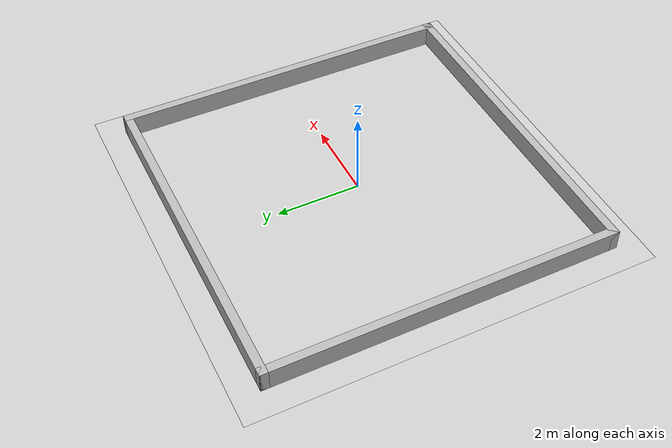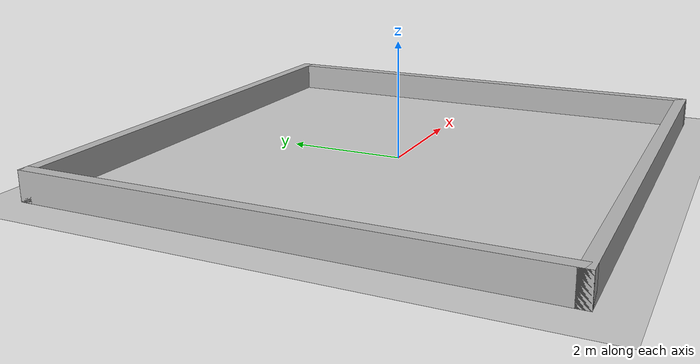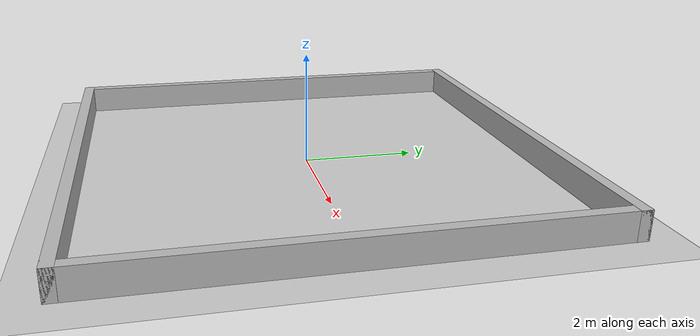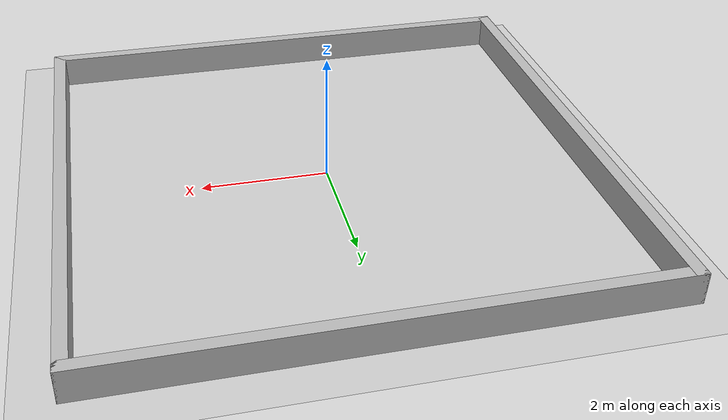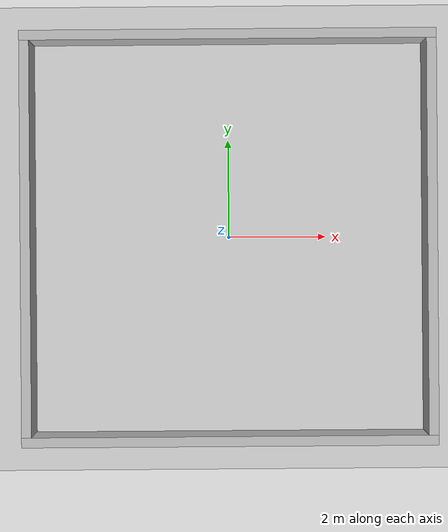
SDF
<?xml version="1.0" ?>
<!--
Copyright 2026 amr-sim-lab contributors
Licensed under the Apache License, Version 2.0. See LICENSE.
-->
<sdf version="1.10">
  <world name="warehouse">
    <physics name="1ms" type="ignored">
      <max_step_size>0.001</max_step_size>
      <real_time_factor>1.0</real_time_factor>
    </physics>

    <plugin filename="gz-sim-physics-system"
            name="gz::sim::systems::Physics"/>
    <plugin filename="gz-sim-user-commands-system"
            name="gz::sim::systems::UserCommands"/>
    <plugin filename="gz-sim-scene-broadcaster-system"
            name="gz::sim::systems::SceneBroadcaster"/>
    <plugin filename="gz-sim-sensors-system"
            name="gz::sim::systems::Sensors">
      <render_engine>ogre2</render_engine>
    </plugin>
    <plugin filename="gz-sim-contact-system"
            name="gz::sim::systems::Contact"/>

    <light type="directional" name="sun">
      <cast_shadows>true</cast_shadows>
      <pose>0 0 10 0 0 0</pose>
      <diffuse>0.9 0.9 0.9 1</diffuse>
      <specular>0.3 0.3 0.3 1</specular>
      <direction>-0.4 0.2 -0.9</direction>
    </light>
    <scene>
      <ambient>0.5 0.5 0.5 1</ambient>
      <background>0.75 0.78 0.82 1</background>
    </scene>

    <model name="ground_plane">
      <static>true</static>
      <link name="link">
        <collision name="collision">
          <geometry><plane><normal>0 0 1</normal><size>40 40</size></plane></geometry>
        </collision>
        <visual name="visual">
          <geometry><plane><normal>0 0 1</normal><size>40 40</size></plane></geometry>
          <material><ambient>0.8 0.8 0.8 1</ambient><diffuse>0.8 0.8 0.8 1</diffuse></material>
        </visual>
      </link>
    </model>

    <model name="perimeter">
      <static>true</static>
      <link name="link">
        <!-- four 8.4 m x 0.2 m x 0.5 m walls around a 8x8 interior -->
        <collision name="n"><pose>0 4.1 0.25 0 0 0</pose>
          <geometry><box><size>8.4 0.2 0.5</size></box></geometry></collision>
        <visual name="nv"><pose>0 4.1 0.25 0 0 0</pose>
          <geometry><box><size>8.4 0.2 0.5</size></box></geometry></visual>
        <collision name="s"><pose>0 -4.1 0.25 0 0 0</pose>
          <geometry><box><size>8.4 0.2 0.5</size></box></geometry></collision>
        <visual name="sv"><pose>0 -4.1 0.25 0 0 0</pose>
          <geometry><box><size>8.4 0.2 0.5</size></box></geometry></visual>
        <collision name="e"><pose>4.1 0 0.25 0 0 0</pose>
          <geometry><box><size>0.2 8.4 0.5</size></box></geometry></collision>
        <visual name="ev"><pose>4.1 0 0.25 0 0 0</pose>
          <geometry><box><size>0.2 8.4 0.5</size></box></geometry></visual>
        <collision name="w"><pose>-4.1 0 0.25 0 0 0</pose>
          <geometry><box><size>0.2 8.4 0.5</size></box></geometry></collision>
        <visual name="wv"><pose>-4.1 0 0.25 0 0 0</pose>
          <geometry><box><size>0.2 8.4 0.5</size></box></geometry></visual>
      </link>
    </model>
  </world>
</sdf>
